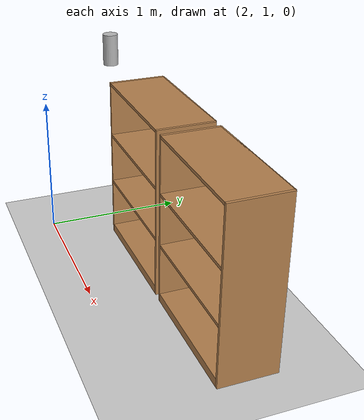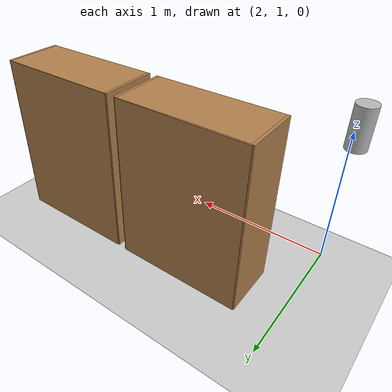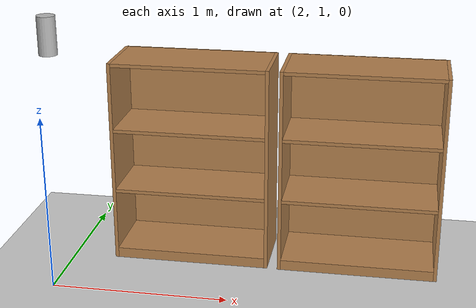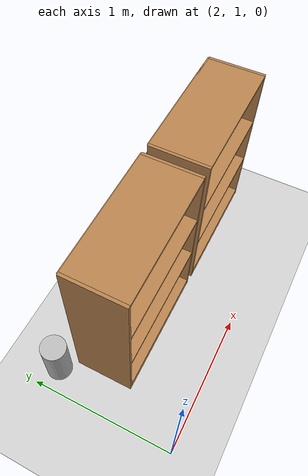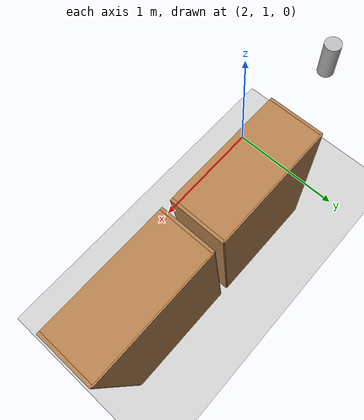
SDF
<sdf version="1.10">
 <world name="empty">
  <model name="ground_plane">
   <static>true</static>
   <link name="link">
    <collision name="collision">
     <geometry><plane><normal>0 0 1</normal><size>100 100</size></plane></geometry>
    </collision>
    <visual name="visual">
     <geometry><plane><normal>0 0 1</normal><size>100 100</size></plane></geometry>
     <material>
      <ambient>0.800000012 0.800000012 0.800000012 1</ambient>
      <diffuse>0.800000012 0.800000012 0.800000012 1</diffuse>
      <specular>0.800000012 0.800000012 0.800000012 1</specular>
     </material>
    </visual>
    <inertial>
     <mass>1</mass>
     <inertia><ixx>1</ixx><ixy>0</ixy><ixz>0</ixz><iyy>1</iyy><iyz>0</iyz><izz>1</izz></inertia>
    </inertial>
   </link>
  </model>
  <model name="Bookshelf">
   <static>true</static>
   <link name="link">
    <inertial>
     <mass>1</mass>
     <inertia><ixx>1</ixx><ixy>0</ixy><ixz>0</ixz><iyy>1</iyy><iyz>0</iyz><izz>1</izz></inertia>
    </inertial>
    <collision name="back">
     <pose>0 0.0050000000000000001 0.59999999999999998 0 0 0</pose>
     <geometry><box><size>0.90000000000000002 0.01 1.2</size></box></geometry>
    </collision>
    <visual name="visual1">
     <pose>0 0.0050000000000000001 0.59999999999999998 0 0 0</pose>
     <geometry><box><size>0.90000000000000002 0.01 1.2</size></box></geometry>
     <material>
      <diffuse>1 1 1 1</diffuse>
      <script><uri>file://media/materials/scripts/gazebo.material</uri><name>Gazebo/Wood</name></script>
      <pbr>
       <metal>
        <albedo_map>https://fuel.gazebosim.org/1.0/openrobotics/models/bookshelf/4/files/bookshelf_diffuse.jpg</albedo_map>
       </metal>
      </pbr>
     </material>
    </visual>
    <collision name="left_side">
     <pose>0.45000000000000001 -0.19500000000000001 0.59999999999999998 0 0 0</pose>
     <geometry><box><size>0.02 0.40000000000000002 1.2</size></box></geometry>
    </collision>
    <visual name="visual2">
     <pose>0.45000000000000001 -0.19500000000000001 0.59999999999999998 0 0 0</pose>
     <geometry><box><size>0.02 0.40000000000000002 1.2</size></box></geometry>
     <material>
      <diffuse>1 1 1 1</diffuse>
      <script><uri>file://media/materials/scripts/gazebo.material</uri><name>Gazebo/Wood</name></script>
      <pbr>
       <metal>
        <albedo_map>https://fuel.gazebosim.org/1.0/openrobotics/models/bookshelf/4/files/bookshelf_diffuse.jpg</albedo_map>
       </metal>
      </pbr>
     </material>
    </visual>
    <collision name="right_side">
     <pose>-0.45000000000000001 -0.19500000000000001 0.59999999999999998 0 0 0</pose>
     <geometry><box><size>0.02 0.40000000000000002 1.2</size></box></geometry>
    </collision>
    <visual name="visual3">
     <pose>-0.45000000000000001 -0.19500000000000001 0.59999999999999998 0 0 0</pose>
     <geometry><box><size>0.02 0.40000000000000002 1.2</size></box></geometry>
     <material>
      <diffuse>1 1 1 1</diffuse>
      <script><uri>file://media/materials/scripts/gazebo.material</uri><name>Gazebo/Wood</name></script>
      <pbr>
       <metal>
        <albedo_map>https://fuel.gazebosim.org/1.0/openrobotics/models/bookshelf/4/files/bookshelf_diffuse.jpg</albedo_map>
       </metal>
      </pbr>
     </material>
    </visual>
    <collision name="bottom">
     <pose>0 -0.19500000000000001 0.029999999999999999 0 0 0</pose>
     <geometry><box><size>0.88 0.40000000000000002 0.059999999999999998</size></box></geometry>
    </collision>
    <visual name="visual4">
     <pose>0 -0.19500000000000001 0.029999999999999999 0 0 0</pose>
     <geometry><box><size>0.88 0.40000000000000002 0.059999999999999998</size></box></geometry>
     <material>
      <diffuse>1 1 1 1</diffuse>
      <script><uri>file://media/materials/scripts/gazebo.material</uri><name>Gazebo/Wood</name></script>
      <pbr>
       <metal>
        <albedo_map>https://fuel.gazebosim.org/1.0/openrobotics/models/bookshelf/4/files/bookshelf_diffuse.jpg</albedo_map>
       </metal>
      </pbr>
     </material>
    </visual>
    <collision name="top">
     <pose>0 -0.19500000000000001 1.1899999999999999 0 0 0</pose>
     <geometry><box><size>0.88 0.40000000000000002 0.02</size></box></geometry>
    </collision>
    <visual name="visual5">
     <pose>0 -0.19500000000000001 1.1899999999999999 0 0 0</pose>
     <geometry><box><size>0.88 0.40000000000000002 0.02</size></box></geometry>
     <material>
      <diffuse>1 1 1 1</diffuse>
      <script><uri>file://media/materials/scripts/gazebo.material</uri><name>Gazebo/Wood</name></script>
      <pbr>
       <metal>
        <albedo_map>https://fuel.gazebosim.org/1.0/openrobotics/models/bookshelf/4/files/bookshelf_diffuse.jpg</albedo_map>
       </metal>
      </pbr>
     </material>
    </visual>
    <collision name="low_shelf">
     <pose>0 -0.19500000000000001 0.42999999999999999 0 0 0</pose>
     <geometry><box><size>0.88 0.40000000000000002 0.02</size></box></geometry>
    </collision>
    <visual name="visual6">
     <pose>0 -0.19500000000000001 0.42999999999999999 0 0 0</pose>
     <geometry><box><size>0.88 0.40000000000000002 0.02</size></box></geometry>
     <material>
      <diffuse>1 1 1 1</diffuse>
      <script><uri>file://media/materials/scripts/gazebo.material</uri><name>Gazebo/Wood</name></script>
      <pbr>
       <metal>
        <albedo_map>https://fuel.gazebosim.org/1.0/openrobotics/models/bookshelf/4/files/bookshelf_diffuse.jpg</albedo_map>
       </metal>
      </pbr>
     </material>
    </visual>
    <collision name="high_shelf">
     <pose>0 -0.19500000000000001 0.80000000000000004 0 0 0</pose>
     <geometry><box><size>0.88 0.40000000000000002 0.02</size></box></geometry>
    </collision>
    <visual name="visual7">
     <pose>0 -0.19500000000000001 0.80000000000000004 0 0 0</pose>
     <geometry><box><size>0.88 0.40000000000000002 0.02</size></box></geometry>
     <material>
      <diffuse>1 1 1 1</diffuse>
      <script><uri>file://media/materials/scripts/gazebo.material</uri><name>Gazebo/Wood</name></script>
      <pbr>
       <metal>
        <albedo_map>https://fuel.gazebosim.org/1.0/openrobotics/models/bookshelf/4/files/bookshelf_diffuse.jpg</albedo_map>
       </metal>
      </pbr>
     </material>
    </visual>
   </link>
   <pose>2.7059299999999999 1.80681 0 0 0 0</pose>
  </model>
  <model name="Bookshelf_0">
   <static>true</static>
   <link name="link">
    <inertial>
     <mass>1</mass>
     <inertia><ixx>1</ixx><ixy>0</ixy><ixz>0</ixz><iyy>1</iyy><iyz>0</iyz><izz>1</izz></inertia>
    </inertial>
    <collision name="back">
     <pose>0 0.0050000000000000001 0.59999999999999998 0 0 0</pose>
     <geometry><box><size>0.90000000000000002 0.01 1.2</size></box></geometry>
    </collision>
    <visual name="visual1">
     <pose>0 0.0050000000000000001 0.59999999999999998 0 0 0</pose>
     <geometry><box><size>0.90000000000000002 0.01 1.2</size></box></geometry>
     <material>
      <diffuse>1 1 1 1</diffuse>
      <script><uri>file://media/materials/scripts/gazebo.material</uri><name>Gazebo/Wood</name></script>
      <pbr>
       <metal>
        <albedo_map>https://fuel.gazebosim.org/1.0/openrobotics/models/bookshelf/4/files/bookshelf_diffuse.jpg</albedo_map>
       </metal>
      </pbr>
     </material>
    </visual>
    <collision name="left_side">
     <pose>0.45000000000000001 -0.19500000000000001 0.59999999999999998 0 0 0</pose>
     <geometry><box><size>0.02 0.40000000000000002 1.2</size></box></geometry>
    </collision>
    <visual name="visual2">
     <pose>0.45000000000000001 -0.19500000000000001 0.59999999999999998 0 0 0</pose>
     <geometry><box><size>0.02 0.40000000000000002 1.2</size></box></geometry>
     <material>
      <diffuse>1 1 1 1</diffuse>
      <script><uri>file://media/materials/scripts/gazebo.material</uri><name>Gazebo/Wood</name></script>
      <pbr>
       <metal>
        <albedo_map>https://fuel.gazebosim.org/1.0/openrobotics/models/bookshelf/4/files/bookshelf_diffuse.jpg</albedo_map>
       </metal>
      </pbr>
     </material>
    </visual>
    <collision name="right_side">
     <pose>-0.45000000000000001 -0.19500000000000001 0.59999999999999998 0 0 0</pose>
     <geometry><box><size>0.02 0.40000000000000002 1.2</size></box></geometry>
    </collision>
    <visual name="visual3">
     <pose>-0.45000000000000001 -0.19500000000000001 0.59999999999999998 0 0 0</pose>
     <geometry><box><size>0.02 0.40000000000000002 1.2</size></box></geometry>
     <material>
      <diffuse>1 1 1 1</diffuse>
      <script><uri>file://media/materials/scripts/gazebo.material</uri><name>Gazebo/Wood</name></script>
      <pbr>
       <metal>
        <albedo_map>https://fuel.gazebosim.org/1.0/openrobotics/models/bookshelf/4/files/bookshelf_diffuse.jpg</albedo_map>
       </metal>
      </pbr>
     </material>
    </visual>
    <collision name="bottom">
     <pose>0 -0.19500000000000001 0.029999999999999999 0 0 0</pose>
     <geometry><box><size>0.88 0.40000000000000002 0.059999999999999998</size></box></geometry>
    </collision>
    <visual name="visual4">
     <pose>0 -0.19500000000000001 0.029999999999999999 0 0 0</pose>
     <geometry><box><size>0.88 0.40000000000000002 0.059999999999999998</size></box></geometry>
     <material>
      <diffuse>1 1 1 1</diffuse>
      <script><uri>file://media/materials/scripts/gazebo.material</uri><name>Gazebo/Wood</name></script>
      <pbr>
       <metal>
        <albedo_map>https://fuel.gazebosim.org/1.0/openrobotics/models/bookshelf/4/files/bookshelf_diffuse.jpg</albedo_map>
       </metal>
      </pbr>
     </material>
    </visual>
    <collision name="top">
     <pose>0 -0.19500000000000001 1.1899999999999999 0 0 0</pose>
     <geometry><box><size>0.88 0.40000000000000002 0.02</size></box></geometry>
    </collision>
    <visual name="visual5">
     <pose>0 -0.19500000000000001 1.1899999999999999 0 0 0</pose>
     <geometry><box><size>0.88 0.40000000000000002 0.02</size></box></geometry>
     <material>
      <diffuse>1 1 1 1</diffuse>
      <script><uri>file://media/materials/scripts/gazebo.material</uri><name>Gazebo/Wood</name></script>
      <pbr>
       <metal>
        <albedo_map>https://fuel.gazebosim.org/1.0/openrobotics/models/bookshelf/4/files/bookshelf_diffuse.jpg</albedo_map>
       </metal>
      </pbr>
     </material>
    </visual>
    <collision name="low_shelf">
     <pose>0 -0.19500000000000001 0.42999999999999999 0 0 0</pose>
     <geometry><box><size>0.88 0.40000000000000002 0.02</size></box></geometry>
    </collision>
    <visual name="visual6">
     <pose>0 -0.19500000000000001 0.42999999999999999 0 0 0</pose>
     <geometry><box><size>0.88 0.40000000000000002 0.02</size></box></geometry>
     <material>
      <diffuse>1 1 1 1</diffuse>
      <script><uri>file://media/materials/scripts/gazebo.material</uri><name>Gazebo/Wood</name></script>
      <pbr>
       <metal>
        <albedo_map>https://fuel.gazebosim.org/1.0/openrobotics/models/bookshelf/4/files/bookshelf_diffuse.jpg</albedo_map>
       </metal>
      </pbr>
     </material>
    </visual>
    <collision name="high_shelf">
     <pose>0 -0.19500000000000001 0.80000000000000004 0 0 0</pose>
     <geometry><box><size>0.88 0.40000000000000002 0.02</size></box></geometry>
    </collision>
    <visual name="visual7">
     <pose>0 -0.19500000000000001 0.80000000000000004 0 0 0</pose>
     <geometry><box><size>0.88 0.40000000000000002 0.02</size></box></geometry>
     <material>
      <diffuse>1 1 1 1</diffuse>
      <script><uri>file://media/materials/scripts/gazebo.material</uri><name>Gazebo/Wood</name></script>
      <pbr>
       <metal>
        <albedo_map>https://fuel.gazebosim.org/1.0/openrobotics/models/bookshelf/4/files/bookshelf_diffuse.jpg</albedo_map>
       </metal>
      </pbr>
     </material>
    </visual>
   </link>
   <pose>3.6852 1.8036399999999999 0 0 0 0</pose>
  </model>
  <model name="beer_3">
   <link name="link">
    <pose>0 0 0.115 0 0 0</pose>
    <inertial>
     <mass>0.39000000000000001</mass>
     <inertia>
      <ixx>0.00058</ixx>
      <ixy>0</ixy>
      <ixz>0</ixz>
      <iyy>0.00058</iyy>
      <iyz>0</iyz>
      <izz>0.00019000000000000001</izz>
     </inertia>
    </inertial>
    <collision name="collision">
     <geometry><cylinder><radius>0.055</radius><length>0.23000000000000001</length></cylinder></geometry>
    </collision>
    <visual name="visual">
     <geometry><cylinder><radius>0.055</radius><length>0.23000000000000001</length></cylinder></geometry>
     <material>
      <script>
       <uri>https://fuel.gazebosim.org/1.0/openrobotics/models/beer/3/files/materials/scripts</uri>
       <uri>https://fuel.gazebosim.org/1.0/openrobotics/models/beer/3/files/materials/textures</uri>
       <name>Beer/Diffuse</name>
      </script>
     </material>
    </visual>
   </link>
   <pose>1.85884 1.54443 1.2 3.8684699999999999e-17 7.9896100000000001e-17 2.5086600000000003e-17</pose>
   <static>false</static>
  </model>
 </world>
</sdf>
